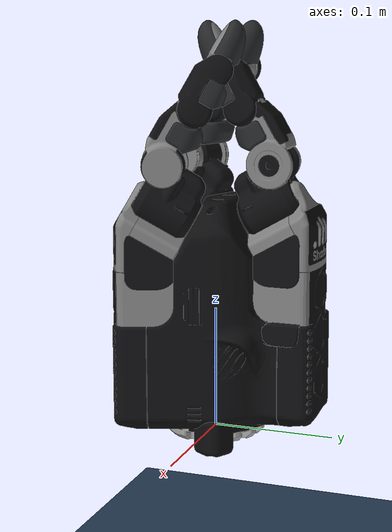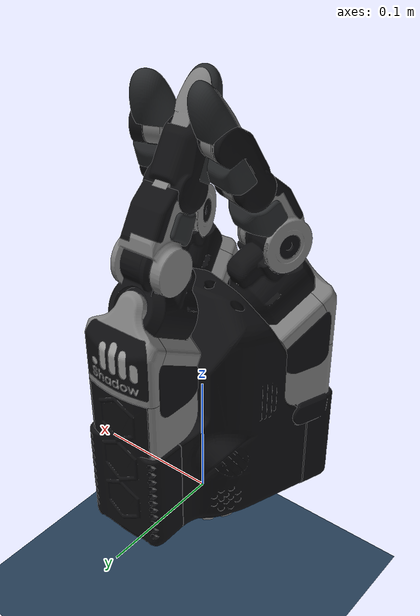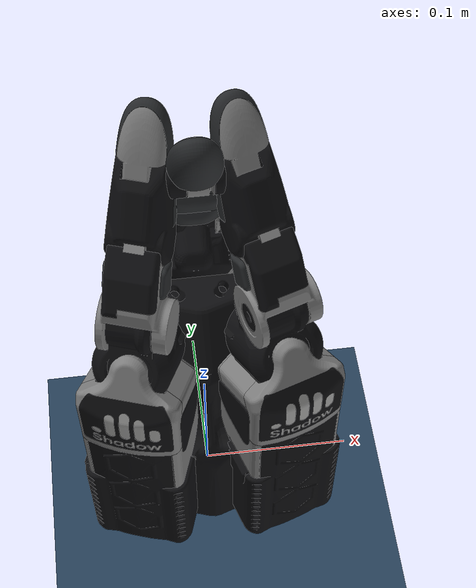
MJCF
<mujoco model="shadow dex-ee hand scene">
  <include file="shadow_dexee.xml"/>

  <statistic extent=".5"/>

  <visual>
    <headlight ambient=".3 .3 .3" diffuse=".6 .6 .6" specular="0 0 0"/>
    <map znear=".01"/>
    <scale forcewidth=".01" contactwidth=".06" contactheight=".01" jointwidth=".01" framelength=".3" framewidth=".01"/>
    <rgba haze="0.15 0.25 0.35 1"/>
    <quality shadowsize="8192"/>
    <global azimuth="-90" elevation="-20"/>
  </visual>

  <asset>
    <texture type="skybox" builtin="gradient" rgb1="0.3 0.5 0.7" rgb2="0 0 0" width="512" height="3072"/>
    <texture type="2d" name="groundplane" builtin="checker" mark="edge" rgb1="0.2 0.3 0.4" rgb2="0.1 0.2 0.3"
      markrgb="0.8 0.8 0.8" width="300" height="300"/>
    <material name="groundplane" texture="groundplane" texuniform="true" texrepeat="5 5" reflectance="0.2"/>
  </asset>

  <worldbody>
    <light pos="0 0 1.5" dir="0 0 -1"/>
    <geom name="floor" pos="0 0 -0.1" size="0 0 0.05" type="plane" material="groundplane"/>
  </worldbody>
</mujoco>

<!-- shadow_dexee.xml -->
<mujoco model="shadow_dexee">
  <compiler autolimits="true" angle="radian" meshdir="assets"/>

  <option integrator="implicitfast" cone="elliptic" noslip_iterations="5" noslip_tolerance="0"/>

  <default>
    <site group="3" rgba="1 0 0 1" size="0.001"/>
    <default class="finger/visual">
      <geom type="mesh" contype="0" conaffinity="0"/>
    </default>
    <default class="finger/collision">
      <geom type="mesh" group="3" material="collision" mass="0"/>
      <default class="finger/collision_soft">
        <geom condim="6" friction="1 0.005 0.0001" solref="-2500 -100"/>
      </default>
      <default class="finger/collision_hard">
        <geom condim="4" friction="1 0.001 2e-05" solref="-7000 -167"/>
      </default>
    </default>
  </default>

  <asset>
    <material name="white_aluminium" rgba="0.6313 0.6313 0.62745 1"/>
    <material name="graphite_black" rgba="0.1529 0.16078 0.16862 1"/>
    <material name="jet_black" rgba="0.0549 0.0549 0.06274 1"/>
    <material name="collision" rgba="1 0.6 0.6 1"/>

    <mesh name="r3_config1_base" file="Asm-MRH-HB1-Visual,00-Plastic.stl"/>
    <mesh name="r3_config1_base_col" file="Asm-MRH-HB1-Visual,00-Plastic.stl"/>
    <mesh name="r3_config1_base_puck" file="Asm-MRH-HB1-Visual,00-Puck.stl"/>
    <mesh name="r3_config1_base_puck_col" file="Asm-MRH-HB1-Visual,00-Puck.stl"/>
    <mesh name="r3_finger_base" file="MRH-FB-MainALU-Visual,00.stl"/>
    <mesh name="r3_finger_base_tb" file="MRH-FB-TB-Main-Visual,00.stl"/>
    <mesh name="r3_finger_cover" file="MRH-FB-Main-Cover-Visual,00.stl"/>
    <mesh name="r3_finger_pulley_block" file="MRH-FB-PulleyBlock1-Visual,00.stl"/>
    <mesh name="r3_finger_lid_white" file="MRH-FB-TB-Lid-White-Visual,00.stl"/>
    <mesh name="r3_finger_lid_logo" file="MRH-FB-TB-Lid-Logo-Visual,00.stl"/>
    <mesh name="r3_finger_cover_small_left" file="MRH-FB-S-Cover-L-Visual,00.stl"/>
    <mesh name="r3_finger_cover_small_right" file="MRH-FB-S-Cover-R-Visual,00.stl"/>
    <mesh name="r3_finger_base_col" file="r3_finger_base_col.stl"/>
    <mesh name="r3_finger_knuckle" file="MRH-F-J0Link-Visual,00.stl" refquat="1 -1 0 0"/>
    <mesh name="r3_finger_knuckle_col" file="MRH-F-J0Link-Visual,00.stl" refquat="1 -1 0 0"/>
    <mesh name="r3_finger_proximal" file="MRH-F-Prox-Visual,00-Main.stl" refquat="1 -1 0 0"/>
    <mesh name="r3_finger_proximal_lid" file="MRH-F-Prox-Visual,00-Lid.stl" refquat="1 -1 0 0"/>
    <mesh name="r3_finger_proximal_magtac" file="MRH-F-Prox-MagTac-Sensor-Visual,00.stl" refquat="1 -1 0 0"/>
    <mesh name="r3_finger_proximal_col" file="Asm-MRH-F-Prox-Visual,00+Magtac,00.stl" refquat="1 -1 0 0"/>
    <mesh name="r3_finger_middle" file="MRH-F-Mid-Visual,00.stl" refquat="1 -1 0 0"/>
    <mesh name="r3_finger_middle_magtac" file="MRH-F-Mid-MagTac-Sensor-Visual,00.stl" refquat="1 -1 0 0"/>
    <mesh name="r3_finger_middle_col" file="Asm-MRH-F-Mid-Visual,00+MagTac,00.stl" refquat="1 -1 0 0"/>
    <mesh name="r3_finger_distal" file="MRH-F-Distal-Visual,00.stl" refquat="0 0 0 1"/>
    <mesh name="r3_finger_distal_sensor" file="MRH-F-Distal-Sensor-Visual,00.stl" refquat="0 -1 0 0"/>
    <mesh name="r3_finger_distal_col" file="MRH-F-Distal-Visual,00.stl" refquat="0 0 0 1"/>
    <mesh name="r3_finger_distal_tip_col" file="MRH-F-Distal-Sensor-Visual,00.stl" refquat="0 -1 0 0"/>
  </asset>

  <extension>
    <plugin plugin="mujoco.pid">
      <instance name="actuator_J0">
        <config key="kp" value="2.8"/>
        <config key="ki" value="4.0"/>
        <config key="kd" value="0.03"/>
        <config key="imax" value="0.1"/>
        <config key="slewmax" value="3.14159"/>
      </instance>
    </plugin>
    <plugin plugin="mujoco.pid">
      <instance name="actuator_J1">
        <config key="kp" value="2.5"/>
        <config key="ki" value="3.0"/>
        <config key="kd" value="0.02"/>
        <config key="imax" value="0.2"/>
        <config key="slewmax" value="3.14159"/>
      </instance>
    </plugin>
    <plugin plugin="mujoco.pid">
      <instance name="actuator_J2">
        <config key="kp" value="1.1"/>
        <config key="ki" value="3.0"/>
        <config key="kd" value="0.01"/>
        <config key="imax" value="0.2"/>
        <config key="slewmax" value="3.14159"/>
      </instance>
    </plugin>
    <plugin plugin="mujoco.pid">
      <instance name="actuator_J3">
        <config key="kp" value="0.6"/>
        <config key="ki" value="3.0"/>
        <config key="kd" value="0.008"/>
        <config key="imax" value="0.1"/>
        <config key="slewmax" value="3.14159"/>
      </instance>
    </plugin>
  </extension>

  <worldbody>
    <light pos="0 0 2"/>
    <site name="tcp" type="sphere" rgba="1 0.5 0 0.2" size="0.001" pos="0 0 0.3"/>
    <site name="attachment_site" type="sphere" group="3" rgba="1 0 0 1" size="0.001"/>
    <body name="hand_base" gravcomp="1">
      <geom name="hand_base_geom" material="jet_black" type="mesh" contype="0" conaffinity="0" mass="0.51"
        mesh="r3_config1_base"/>
      <geom name="hand_base_geom_col" type="mesh" group="3" rgba="1 0.6 0.6 1" mass="0" mesh="r3_config1_base_col"/>
      <geom name="hand_base_puck_geom" material="white_aluminium" type="mesh" contype="0" conaffinity="0" mass="0"
        mesh="r3_config1_base_puck"/>
      <geom name="hand_base_puck_geom_col" type="mesh" group="3" rgba="1 0.6 0.6 1" mass="0"
        mesh="r3_config1_base_puck_col"/>
      <geom name="hand_base_CollisionGeom_1" type="cylinder" contype="0" conaffinity="0" group="5" size="0.08"
        rgba="1 1 1 0.3" mass="0" fromto="0 0 -0.01 0 0 0.195"/>
    </body>
    <body pos="0 0.05 0.017" quat="1 0 0 0" name="F0/">
      <body name="F0/finger_base" gravcomp="1">
        <site name="F0/attachment_site"/>
        <geom name="F0/base_geom" class="finger/visual" mass="0.89937782" mesh="r3_finger_base"/>
        <geom name="F0/base_tb_geom" class="finger/visual" mass="0" mesh="r3_finger_base_tb"/>
        <geom name="F0/base_cover_geom" class="finger/visual" material="jet_black" mass="0" mesh="r3_finger_cover"/>
        <geom name="F0/base_pulley_block_geom" class="finger/visual" mass="0" mesh="r3_finger_pulley_block"/>
        <geom name="F0/base_lid_white_geom" class="finger/visual" material="white_aluminium" mass="0"
          mesh="r3_finger_lid_white"/>
        <geom name="F0/base_lid_logo_geom" class="finger/visual" material="jet_black" mass="0"
          mesh="r3_finger_lid_logo"/>
        <geom name="F0/base_cover_small_left_geom" class="finger/visual" material="jet_black" mass="0"
          mesh="r3_finger_cover_small_left"/>
        <geom name="F0/base_cover_small_right_geom" class="finger/visual" material="jet_black" mass="0"
          mesh="r3_finger_cover_small_right"/>
        <geom name="F0/base_geom_col" class="finger/collision_hard" quat="1 -1 0 0" mesh="r3_finger_base_col"/>
        <body name="F0/finger_knuckle" pos="0 0.015 0.17902" euler="-1.0472 0 0" gravcomp="1">
          <site name="F0/j0_site"/>
          <joint name="F0/J0" axis="0 0 -1" range="-0.8727 0.8727" armature="8e-05" damping="0.009"
            frictionloss="0.009"/>
          <geom name="F0/knuckle_geom" class="finger/visual" material="jet_black" mass="0.13077995"
            mesh="r3_finger_knuckle"/>
          <geom name="F0/knuckle_geom_col" class="finger/collision_hard" mesh="r3_finger_knuckle_col"/>
          <body name="F0/finger_proximal" pos="0 -0.03 0" gravcomp="1">
            <site name="F0/j1_site"/>
            <joint name="F0/J1" axis="1 0 0" range="-1.3963 0.7854" armature="8e-05" damping="0.009"
              frictionloss="0.009"/>
            <geom name="F0/proximal_geom" class="finger/visual" mass="0.09614332" mesh="r3_finger_proximal"/>
            <geom name="F0/proximal_lid_geom" class="finger/visual" material="jet_black" mass="0"
              mesh="r3_finger_proximal_lid"/>
            <geom name="F0/proximal_magtac_geom" class="finger/visual" material="graphite_black" mass="0"
              mesh="r3_finger_proximal_magtac"/>
            <geom name="F0/proximal_geom_col" class="finger/collision_hard" mesh="r3_finger_proximal_col"/>
            <body name="F0/finger_middle" pos="0 -0.05 0" gravcomp="1">
              <site name="F0/j2_site"/>
              <joint name="F0/J2" axis="1 0 0" range="0 1.3963" armature="8e-05" damping="0.009" frictionloss="0.009"/>
              <geom name="F0/middle_geom" class="finger/visual" material="jet_black" mass="0.05585897"
                mesh="r3_finger_middle"/>
              <geom name="F0/middle_magtac_geom" class="finger/visual" material="graphite_black" mass="0"
                mesh="r3_finger_middle_magtac"/>
              <geom name="F0/middle_geom_col" class="finger/collision_hard" mesh="r3_finger_middle_col"/>
              <body name="F0/finger_distal" pos="0 -0.035 0" quat="0 0 -1 1" gravcomp="1">
                <site name="F0/j3_site"/>
                <joint name="F0/J3" axis="-1 0 0" range="-0.5236 1.4835" armature="8e-05" damping="0.009"
                  frictionloss="0.009"/>
                <geom name="F0/distal_geom" class="finger/visual" mass="0.02766365" mesh="r3_finger_distal"/>
                <geom name="F0/distal_sensor_geom" class="finger/visual" material="graphite_black" mass="0"
                  mesh="r3_finger_distal_sensor"/>
                <geom name="F0/distal_geom_col" class="finger/collision_hard" mesh="r3_finger_distal_col"/>
                <geom name="F0/distal_geom_tip_col" class="finger/collision_soft" mesh="r3_finger_distal_tip_col"/>
                <site name="F0/fingertip_site" pos="0 -0.00625 0.04"/>
                <site name="F0/distal_site" pos="0 0.007 0.03"/>
                <geom name="F0/finger_distal_CollisionGeom_1" type="capsule" contype="0" conaffinity="0" group="5"
                  size="0.018" rgba="1 1 1 0.3" mass="0" fromto="0 0 0.025 0 0 0"/>
              </body>
              <geom name="F0/finger_middle_CollisionGeom_1" type="cylinder" contype="0" conaffinity="0" group="5"
                size="0.014" rgba="1 1 1 0.3" mass="0" fromto="0.015 0 0 -0.015 0 0"/>
              <geom name="F0/finger_middle_CollisionGeom_2" type="capsule" contype="0" conaffinity="0" group="5"
                size="0.02" rgba="1 1 1 0.3" mass="0" fromto="0 -0.026 0 0 -0.01 0"/>
              <geom name="F0/finger_middle_CollisionGeom_3" type="cylinder" contype="0" conaffinity="0" group="5"
                size="0.014" rgba="1 1 1 0.3" mass="0" fromto="0.015 -0.035 0 -0.015 -0.035 0"/>
            </body>
            <geom name="F0/finger_proximal_CollisionGeom_1" type="cylinder" contype="0" conaffinity="0" group="5"
              size="0.02" rgba="1 1 1 0.3" mass="0" fromto="0.02 0 0 -0.023 0 0"/>
            <geom name="F0/finger_proximal_CollisionGeom_2" type="capsule" contype="0" conaffinity="0" group="5"
              size="0.025" rgba="1 1 1 0.3" mass="0" fromto="0 -0.01 0.003 0 -0.04 0.003"/>
          </body>
          <geom name="F0/finger_knuckle_CollisionGeom_1" type="cylinder" contype="0" conaffinity="0" group="5"
            size="0.027" rgba="1 1 1 0.3" mass="0" fromto="0 0 0.008 0 0 -0.047"/>
          <geom name="F0/finger_knuckle_CollisionGeom_2" type="cylinder" contype="0" conaffinity="0" group="5"
            size="0.018" rgba="1 1 1 0.3" mass="0" fromto="0.018 -0.03 0 -0.018 -0.03 0"/>
          <geom name="F0/finger_knuckle_CollisionGeom_3" type="capsule" contype="0" conaffinity="0" group="5"
            size="0.025" rgba="1 1 1 0.3" mass="0" fromto="-0.0015 -0.02 -0.01 -0.0015 -0.02 -0.02"/>
        </body>
        <geom name="F0/finger_base_CollisionGeom_1" type="cylinder" contype="0" conaffinity="0" group="5" size="0.05"
          rgba="1 1 1 0.3" mass="0" fromto="0 0 -0.005 0 0 0.195"/>
      </body>
    </body>

    <body pos="0.039 -0.029 0.017" quat="-0.16212752892551119 0 0 0.98676981326168844" name="F1/">
      <body name="F1/finger_base" gravcomp="1">
        <site name="F1/attachment_site"/>
        <geom name="F1/base_geom" class="finger/visual" mass="0.89937782" mesh="r3_finger_base"/>
        <geom name="F1/base_tb_geom" class="finger/visual" mass="0" mesh="r3_finger_base_tb"/>
        <geom name="F1/base_cover_geom" class="finger/visual" material="jet_black" mass="0" mesh="r3_finger_cover"/>
        <geom name="F1/base_pulley_block_geom" class="finger/visual" mass="0" mesh="r3_finger_pulley_block"/>
        <geom name="F1/base_lid_white_geom" class="finger/visual" material="white_aluminium" mass="0"
          mesh="r3_finger_lid_white"/>
        <geom name="F1/base_lid_logo_geom" class="finger/visual" material="jet_black" mass="0"
          mesh="r3_finger_lid_logo"/>
        <geom name="F1/base_cover_small_left_geom" class="finger/visual" material="jet_black" mass="0"
          mesh="r3_finger_cover_small_left"/>
        <geom name="F1/base_cover_small_right_geom" class="finger/visual" material="jet_black" mass="0"
          mesh="r3_finger_cover_small_right"/>
        <geom name="F1/base_geom_col" class="finger/collision_hard" quat="1 -1 0 0" mesh="r3_finger_base_col"/>
        <body name="F1/finger_knuckle" pos="0 0.015 0.17902" euler="-1.0472 0 0" gravcomp="1">
          <site name="F1/j0_site"/>
          <joint name="F1/J0" axis="0 0 -1" range="-0.8727 0.8727" armature="8e-05" damping="0.009"
            frictionloss="0.009"/>
          <geom name="F1/knuckle_geom" class="finger/visual" material="jet_black" mass="0.13077995"
            mesh="r3_finger_knuckle"/>
          <geom name="F1/knuckle_geom_col" class="finger/collision_hard" mesh="r3_finger_knuckle_col"/>
          <body name="F1/finger_proximal" pos="0 -0.03 0" gravcomp="1">
            <site name="F1/j1_site"/>
            <joint name="F1/J1" axis="1 0 0" range="-1.3963 0.7854" armature="8e-05" damping="0.009"
              frictionloss="0.009"/>
            <geom name="F1/proximal_geom" class="finger/visual" mass="0.09614332" mesh="r3_finger_proximal"/>
            <geom name="F1/proximal_lid_geom" class="finger/visual" material="jet_black" mass="0"
              mesh="r3_finger_proximal_lid"/>
            <geom name="F1/proximal_magtac_geom" class="finger/visual" material="graphite_black" mass="0"
              mesh="r3_finger_proximal_magtac"/>
            <geom name="F1/proximal_geom_col" class="finger/collision_hard" mesh="r3_finger_proximal_col"/>
            <body name="F1/finger_middle" pos="0 -0.05 0" gravcomp="1">
              <site name="F1/j2_site"/>
              <joint name="F1/J2" axis="1 0 0" range="0 1.3963" armature="8e-05" damping="0.009" frictionloss="0.009"/>
              <geom name="F1/middle_geom" class="finger/visual" material="jet_black" mass="0.05585897"
                mesh="r3_finger_middle"/>
              <geom name="F1/middle_magtac_geom" class="finger/visual" material="graphite_black" mass="0"
                mesh="r3_finger_middle_magtac"/>
              <geom name="F1/middle_geom_col" class="finger/collision_hard" mesh="r3_finger_middle_col"/>
              <body name="F1/finger_distal" pos="0 -0.035 0" quat="0 0 -1 1" gravcomp="1">
                <site name="F1/j3_site"/>
                <joint name="F1/J3" axis="-1 0 0" range="-0.5236 1.4835" armature="8e-05" damping="0.009"
                  frictionloss="0.009"/>
                <geom name="F1/distal_geom" class="finger/visual" mass="0.02766365" mesh="r3_finger_distal"/>
                <geom name="F1/distal_sensor_geom" class="finger/visual" material="graphite_black" mass="0"
                  mesh="r3_finger_distal_sensor"/>
                <geom name="F1/distal_geom_col" class="finger/collision_hard" mesh="r3_finger_distal_col"/>
                <geom name="F1/distal_geom_tip_col" class="finger/collision_soft" mesh="r3_finger_distal_tip_col"/>
                <site name="F1/fingertip_site" pos="0 -0.00625 0.04"/>
                <site name="F1/distal_site" pos="0 0.007 0.03"/>
                <geom name="F1/finger_distal_CollisionGeom_1" type="capsule" contype="0" conaffinity="0" group="5"
                  size="0.018" rgba="1 1 1 0.3" mass="0" fromto="0 0 0.025 0 0 0"/>
              </body>
              <geom name="F1/finger_middle_CollisionGeom_1" type="cylinder" contype="0" conaffinity="0" group="5"
                size="0.014" rgba="1 1 1 0.3" mass="0" fromto="0.015 0 0 -0.015 0 0"/>
              <geom name="F1/finger_middle_CollisionGeom_2" type="capsule" contype="0" conaffinity="0" group="5"
                size="0.02" rgba="1 1 1 0.3" mass="0" fromto="0 -0.026 0 0 -0.01 0"/>
              <geom name="F1/finger_middle_CollisionGeom_3" type="cylinder" contype="0" conaffinity="0" group="5"
                size="0.014" rgba="1 1 1 0.3" mass="0" fromto="0.015 -0.035 0 -0.015 -0.035 0"/>
            </body>
            <geom name="F1/finger_proximal_CollisionGeom_1" type="cylinder" contype="0" conaffinity="0" group="5"
              size="0.02" rgba="1 1 1 0.3" mass="0" fromto="0.02 0 0 -0.023 0 0"/>
            <geom name="F1/finger_proximal_CollisionGeom_2" type="capsule" contype="0" conaffinity="0" group="5"
              size="0.025" rgba="1 1 1 0.3" mass="0" fromto="0 -0.01 0.003 0 -0.04 0.003"/>
          </body>
          <geom name="F1/finger_knuckle_CollisionGeom_1" type="cylinder" contype="0" conaffinity="0" group="5"
            size="0.027" rgba="1 1 1 0.3" mass="0" fromto="0 0 0.008 0 0 -0.047"/>
          <geom name="F1/finger_knuckle_CollisionGeom_2" type="cylinder" contype="0" conaffinity="0" group="5"
            size="0.018" rgba="1 1 1 0.3" mass="0" fromto="0.018 -0.03 0 -0.018 -0.03 0"/>
          <geom name="F1/finger_knuckle_CollisionGeom_3" type="capsule" contype="0" conaffinity="0" group="5"
            size="0.025" rgba="1 1 1 0.3" mass="0" fromto="-0.0015 -0.02 -0.01 -0.0015 -0.02 -0.02"/>
        </body>
        <geom name="F1/finger_base_CollisionGeom_1" type="cylinder" contype="0" conaffinity="0" group="5" size="0.0500"
          rgba="1 1 1 0.3" mass="0" fromto="0 0 -0.005 0 0 0.195"/>
      </body>
    </body>

    <body pos="-0.039 -0.029 0.017" quat="0.16212752892551119 0 0 0.98676981326168844" name="F2/">
      <body name="F2/finger_base" gravcomp="1">
        <site name="F2/attachment_site"/>
        <geom name="F2/base_geom" class="finger/visual" mass="0.89937782" mesh="r3_finger_base"/>
        <geom name="F2/base_tb_geom" class="finger/visual" mass="0" mesh="r3_finger_base_tb"/>
        <geom name="F2/base_cover_geom" class="finger/visual" material="jet_black" mass="0" mesh="r3_finger_cover"/>
        <geom name="F2/base_pulley_block_geom" class="finger/visual" mass="0" mesh="r3_finger_pulley_block"/>
        <geom name="F2/base_lid_white_geom" class="finger/visual" material="white_aluminium" mass="0"
          mesh="r3_finger_lid_white"/>
        <geom name="F2/base_lid_logo_geom" class="finger/visual" material="jet_black" mass="0"
          mesh="r3_finger_lid_logo"/>
        <geom name="F2/base_cover_small_left_geom" class="finger/visual" material="jet_black" mass="0"
          mesh="r3_finger_cover_small_left"/>
        <geom name="F2/base_cover_small_right_geom" class="finger/visual" material="jet_black" mass="0"
          mesh="r3_finger_cover_small_right"/>
        <geom name="F2/base_geom_col" class="finger/collision_hard" quat="1 -1 0 0" mesh="r3_finger_base_col"/>
        <body name="F2/finger_knuckle" pos="0 0.015 0.17902" euler="-1.0472 0 0" gravcomp="1">
          <site name="F2/j0_site"/>
          <joint name="F2/J0" axis="0 0 -1" range="-0.8727 0.8727" armature="8e-05" damping="0.009"
            frictionloss="0.009"/>
          <geom name="F2/knuckle_geom" class="finger/visual" material="jet_black" mass="0.13077995"
            mesh="r3_finger_knuckle"/>
          <geom name="F2/knuckle_geom_col" class="finger/collision_hard" mesh="r3_finger_knuckle_col"/>
          <body name="F2/finger_proximal" pos="0 -0.03 0" gravcomp="1">
            <site name="F2/j1_site"/>
            <joint name="F2/J1" axis="1 0 0" range="-1.3963 0.7854" armature="8e-05" damping="0.009"
              frictionloss="0.009"/>
            <geom name="F2/proximal_geom" class="finger/visual" mass="0.09614332" mesh="r3_finger_proximal"/>
            <geom name="F2/proximal_lid_geom" class="finger/visual" material="jet_black" mass="0"
              mesh="r3_finger_proximal_lid"/>
            <geom name="F2/proximal_magtac_geom" class="finger/visual" material="graphite_black" mass="0"
              mesh="r3_finger_proximal_magtac"/>
            <geom name="F2/proximal_geom_col" class="finger/collision_hard" mesh="r3_finger_proximal_col"/>
            <body name="F2/finger_middle" pos="0 -0.05 0" gravcomp="1">
              <site name="F2/j2_site"/>
              <joint name="F2/J2" axis="1 0 0" range="0 1.3963" armature="8e-05" damping="0.009" frictionloss="0.009"/>
              <geom name="F2/middle_geom" class="finger/visual" material="jet_black" mass="0.05585897"
                mesh="r3_finger_middle"/>
              <geom name="F2/middle_magtac_geom" class="finger/visual" material="graphite_black" mass="0"
                mesh="r3_finger_middle_magtac"/>
              <geom name="F2/middle_geom_col" class="finger/collision_hard" mesh="r3_finger_middle_col"/>
              <body name="F2/finger_distal" pos="0 -0.035 0" quat="0 0 -1 1" gravcomp="1">
                <site name="F2/j3_site"/>
                <joint name="F2/J3" axis="-1 0 0" range="-0.5236 1.4835" armature="8e-05" damping="0.009"
                  frictionloss="0.009"/>
                <geom name="F2/distal_geom" class="finger/visual" mass="0.02766365" mesh="r3_finger_distal"/>
                <geom name="F2/distal_sensor_geom" class="finger/visual" material="graphite_black" mass="0"
                  mesh="r3_finger_distal_sensor"/>
                <geom name="F2/distal_geom_col" class="finger/collision_hard" mesh="r3_finger_distal_col"/>
                <geom name="F2/distal_geom_tip_col" class="finger/collision_soft" mesh="r3_finger_distal_tip_col"/>
                <site name="F2/fingertip_site" pos="0 -0.00625 0.04"/>
                <site name="F2/distal_site" pos="0 0.007 0.03"/>
                <geom name="F2/finger_distal_CollisionGeom_1" type="capsule" contype="0" conaffinity="0" group="5"
                  size="0.018" rgba="1 1 1 0.3" mass="0" fromto="0 0 0.025 0 0 0"/>
              </body>
              <geom name="F2/finger_middle_CollisionGeom_1" type="cylinder" contype="0" conaffinity="0" group="5"
                size="0.014" rgba="1 1 1 0.3" mass="0" fromto="0.015 0 0 -0.015 0 0"/>
              <geom name="F2/finger_middle_CollisionGeom_2" type="capsule" contype="0" conaffinity="0" group="5"
                size="0.02" rgba="1 1 1 0.3" mass="0" fromto="0 -0.026 0 0 -0.01 0"/>
              <geom name="F2/finger_middle_CollisionGeom_3" type="cylinder" contype="0" conaffinity="0" group="5"
                size="0.014" rgba="1 1 1 0.3" mass="0" fromto="0.015 -0.035 0 -0.015 -0.035 0"/>
            </body>
            <geom name="F2/finger_proximal_CollisionGeom_1" type="cylinder" contype="0" conaffinity="0" group="5"
              size="0.02" rgba="1 1 1 0.3" mass="0" fromto="0.02 0 0 -0.023 0 0"/>
            <geom name="F2/finger_proximal_CollisionGeom_2" type="capsule" contype="0" conaffinity="0" group="5"
              size="0.025" rgba="1 1 1 0.3" mass="0" fromto="0 -0.01 0.003 0 -0.04 0.003"/>
          </body>
          <geom name="F2/finger_knuckle_CollisionGeom_1" type="cylinder" contype="0" conaffinity="0" group="5"
            size="0.027" rgba="1 1 1 0.3" mass="0" fromto="0 0 0.008 0 0 -0.047"/>
          <geom name="F2/finger_knuckle_CollisionGeom_2" type="cylinder" contype="0" conaffinity="0" group="5"
            size="0.018" rgba="1 1 1 0.3" mass="0" fromto="0.018 -0.03 0 -0.018 -0.03 0"/>
          <geom name="F2/finger_knuckle_CollisionGeom_3" type="capsule" contype="0" conaffinity="0" group="5"
            size="0.025" rgba="1 1 1 0.3" mass="0" fromto="-0.0015 -0.02 -0.01 -0.0015 -0.02 -0.02"/>
        </body>
        <geom name="F2/finger_base_CollisionGeom_1" type="cylinder" contype="0" conaffinity="0" group="5" size="0.05"
          rgba="1 1 1 0.3" mass="0" fromto="0 0 -0.005 0 0 0.195"/>
      </body>
    </body>
  </worldbody>

  <contact>
    <exclude name="hand_base:F0_finger_knuckle" body1="hand_base" body2="F0/finger_knuckle"/>
    <exclude name="hand_base:F1_finger_knuckle" body1="hand_base" body2="F1/finger_knuckle"/>
    <exclude name="hand_base:F2_finger_knuckle" body1="hand_base" body2="F2/finger_knuckle"/>
    <exclude name="F0/base:knuckle" body1="F0/finger_base" body2="F0/finger_knuckle"/>
    <exclude name="F1/base:knuckle" body1="F1/finger_base" body2="F1/finger_knuckle"/>
    <exclude name="F2/base:knuckle" body1="F2/finger_base" body2="F2/finger_knuckle"/>
  </contact>

  <actuator>
    <plugin name="F0/J0_actuator" plugin="mujoco.pid" instance="actuator_J0" ctrlrange="-0.8727 0.8727"
      forcerange="-0.9 0.53" dyntype="none" joint="F0/J0" actdim="2"/>
    <plugin name="F0/J1_actuator" plugin="mujoco.pid" instance="actuator_J1" ctrlrange="-1.3963 0.7854"
      forcerange="-0.35 1.2" dyntype="none" joint="F0/J1" actdim="2"/>
    <plugin name="F0/J2_actuator" plugin="mujoco.pid" instance="actuator_J2" ctrlrange="0 1.3963" forcerange="-0.52 0.7"
      dyntype="none" joint="F0/J2" actdim="2"/>
    <plugin name="F0/J3_actuator" plugin="mujoco.pid" instance="actuator_J3" ctrlrange="-0.5236 1.4835"
      forcerange="-0.3 0.3" dyntype="none" joint="F0/J3" actdim="2"/>
    <plugin name="F1/J0_actuator" plugin="mujoco.pid" instance="actuator_J0" ctrlrange="-0.8727 0.8727"
      forcerange="-0.9 0.53" dyntype="none" joint="F1/J0" actdim="2"/>
    <plugin name="F1/J1_actuator" plugin="mujoco.pid" instance="actuator_J1" ctrlrange="-1.3963 0.7854"
      forcerange="-0.35 1.2" dyntype="none" joint="F1/J1" actdim="2"/>
    <plugin name="F1/J2_actuator" plugin="mujoco.pid" instance="actuator_J2" ctrlrange="0 1.3963" forcerange="-0.52 0.7"
      dyntype="none" joint="F1/J2" actdim="2"/>
    <plugin name="F1/J3_actuator" plugin="mujoco.pid" instance="actuator_J3" ctrlrange="-0.5236 1.4835"
      forcerange="-0.3 0.3" dyntype="none" joint="F1/J3" actdim="2"/>
    <plugin name="F2/J0_actuator" plugin="mujoco.pid" instance="actuator_J0" ctrlrange="-0.8727 0.8727"
      forcerange="-0.9 0.53" dyntype="none" joint="F2/J0" actdim="2"/>
    <plugin name="F2/J1_actuator" plugin="mujoco.pid" instance="actuator_J1" ctrlrange="-1.3963 0.7854"
      forcerange="-0.35 1.2" dyntype="none" joint="F2/J1" actdim="2"/>
    <plugin name="F2/J2_actuator" plugin="mujoco.pid" instance="actuator_J2" ctrlrange="0 1.3963" forcerange="-0.52 0.7"
      dyntype="none" joint="F2/J2" actdim="2"/>
    <plugin name="F2/J3_actuator" plugin="mujoco.pid" instance="actuator_J3" ctrlrange="-0.5236 1.4835"
      forcerange="-0.3 0.3" dyntype="none" joint="F2/J3" actdim="2"/>
  </actuator>

  <sensor>
    <jointactuatorfrc name="F0/j0_torque" joint="F0/J0"/>
    <jointactuatorfrc name="F0/j1_torque" joint="F0/J1"/>
    <jointactuatorfrc name="F0/j2_torque" joint="F0/J2"/>
    <jointactuatorfrc name="F0/j3_torque" joint="F0/J3"/>
    <jointactuatorfrc name="F1/j0_torque" joint="F1/J0"/>
    <jointactuatorfrc name="F1/j1_torque" joint="F1/J1"/>
    <jointactuatorfrc name="F1/j2_torque" joint="F1/J2"/>
    <jointactuatorfrc name="F1/j3_torque" joint="F1/J3"/>
    <jointactuatorfrc name="F2/j0_torque" joint="F2/J0"/>
    <jointactuatorfrc name="F2/j1_torque" joint="F2/J1"/>
    <jointactuatorfrc name="F2/j2_torque" joint="F2/J2"/>
    <jointactuatorfrc name="F2/j3_torque" joint="F2/J3"/>
  </sensor>
</mujoco>
